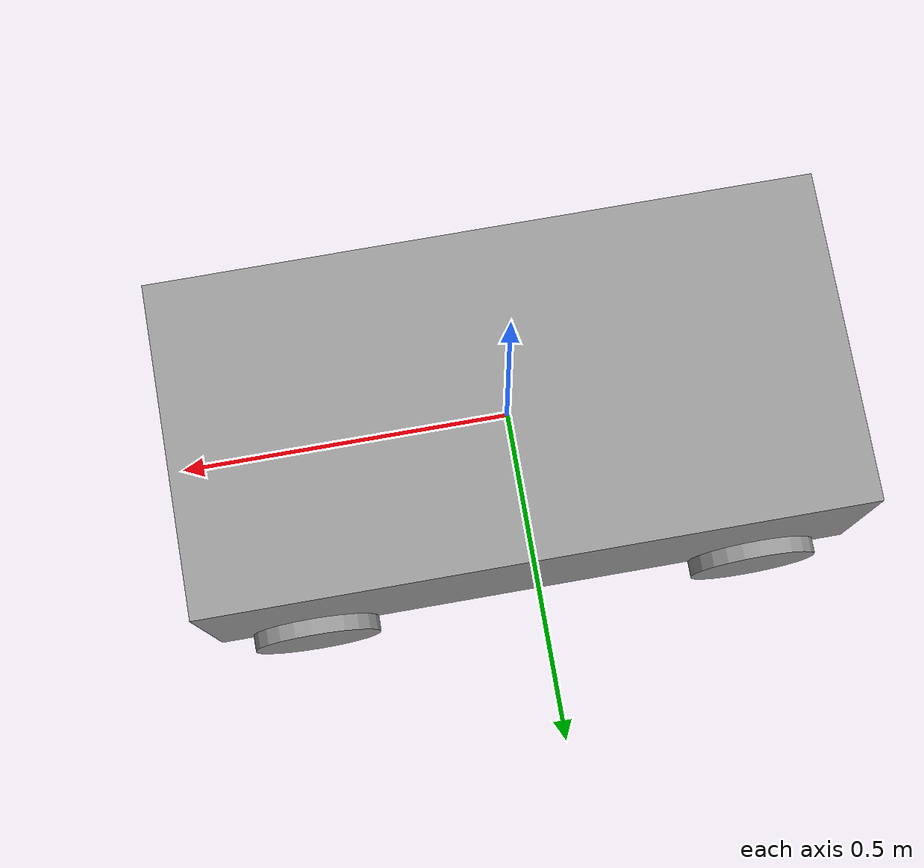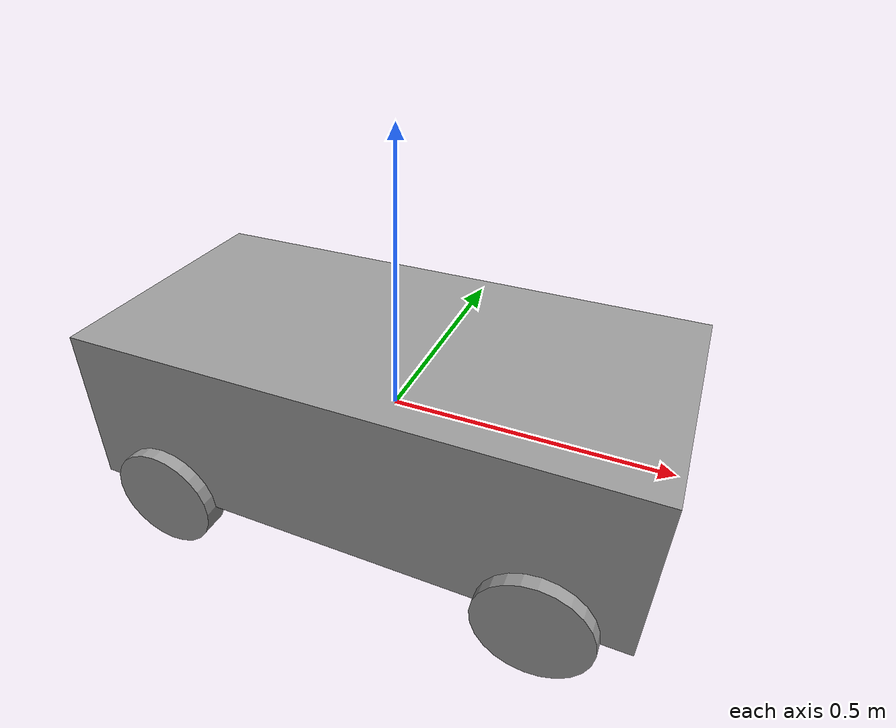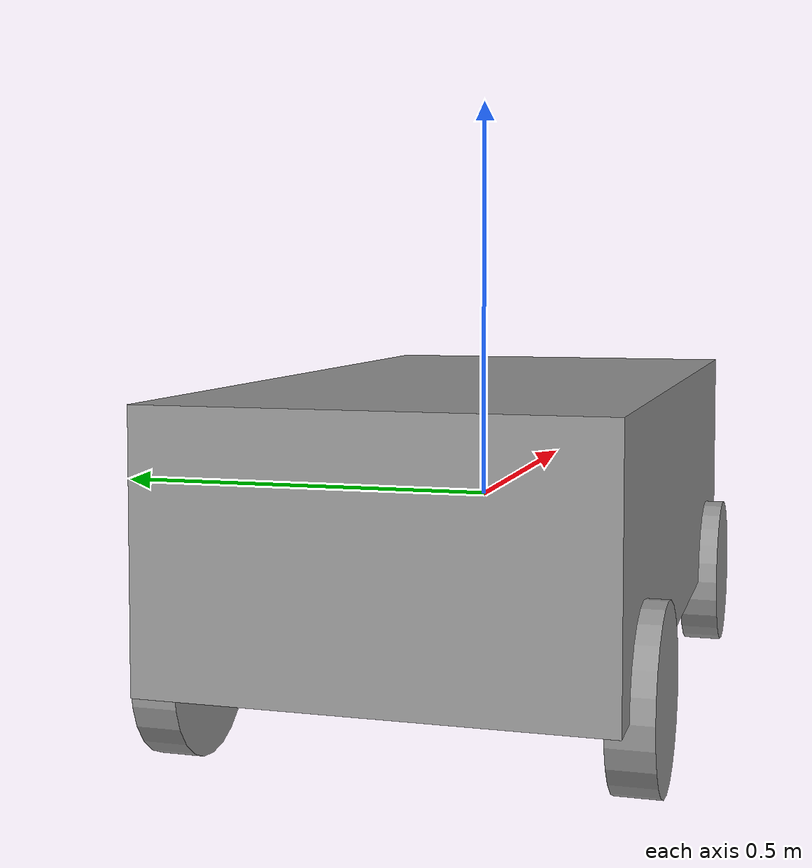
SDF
<?xml version='1.0'?>
<sdf version='1.6'>
  <model name='standalone'>
    <link name='link'>
      <inertial>
        <mass>1</mass>
        <inertia>
          <ixx>0.166667</ixx>
          <ixy>0</ixy>
          <ixz>0</ixz>
          <iyy>0.166667</iyy>
          <iyz>0</iyz>
          <izz>0.166667</izz>
        </inertia>
        <pose frame=''>0 0 0 0 -0 0</pose>
      </inertial>
      <self_collide>0</self_collide>
      <enable_wind>0</enable_wind>
      <kinematic>0</kinematic>
      <pose frame=''>0 0 0 0 -0 0</pose>
      <gravity>1</gravity>
      <visual name='visual'>
        <geometry>
          <box>
            <size>1 0.5 0.3</size>
          </box>
        </geometry>
        <material>
          <script>
            <name>Gazebo/Grey</name>
            <uri>file://media/materials/scripts/gazebo.material</uri>
          </script>
          <shader type='pixel'>
            <normal_map>__default__</normal_map>
          </shader>
          <ambient>0.3 0.3 0.3 1</ambient>
          <diffuse>0.7 0.7 0.7 1</diffuse>
          <specular>0.01 0.01 0.01 1</specular>
          <emissive>0 0 0 1</emissive>
        </material>
        <pose frame=''>0 0 0 0 -0 0</pose>
        <transparency>0</transparency>
        <cast_shadows>1</cast_shadows>
      </visual>
      <collision name='collision'>
        <laser_retro>0</laser_retro>
        <max_contacts>10</max_contacts>
        <pose frame=''>0 0 0 0 -0 0</pose>
        <geometry>
          <box>
            <size>1 0.5 0.3</size>
          </box>
        </geometry>
        <surface>
          <friction>
            <ode>
              <mu>1</mu>
              <mu2>1</mu2>
              <fdir1>0 0 0</fdir1>
              <slip1>0</slip1>
              <slip2>0</slip2>
            </ode>
            <torsional>
              <coefficient>1</coefficient>
              <patch_radius>0</patch_radius>
              <surface_radius>0</surface_radius>
              <use_patch_radius>1</use_patch_radius>
              <ode>
                <slip>0</slip>
              </ode>
            </torsional>
          </friction>
          <bounce>
            <restitution_coefficient>0</restitution_coefficient>
            <threshold>1e+06</threshold>
          </bounce>
          <contact>
            <collide_without_contact>0</collide_without_contact>
            <collide_without_contact_bitmask>1</collide_without_contact_bitmask>
            <collide_bitmask>1</collide_bitmask>
            <ode>
              <soft_cfm>0</soft_cfm>
              <soft_erp>0.2</soft_erp>
              <kp>1e+13</kp>
              <kd>1</kd>
              <max_vel>0.01</max_vel>
              <min_depth>0</min_depth>
            </ode>
            <bullet>
              <split_impulse>1</split_impulse>
              <split_impulse_penetration_threshold>-0.01</split_impulse_penetration_threshold>
              <soft_cfm>0</soft_cfm>
              <soft_erp>0.2</soft_erp>
              <kp>1e+13</kp>
              <kd>1</kd>
            </bullet>
          </contact>
        </surface>
      </collision>
    </link>
    <link name='link_0'>
      <inertial>
        <mass>1</mass>
        <inertia>
          <ixx>0.145833</ixx>
          <ixy>0</ixy>
          <ixz>0</ixz>
          <iyy>0.145833</iyy>
          <iyz>0</iyz>
          <izz>0.125</izz>
        </inertia>
        <pose frame=''>0 0 0 0 -0 0</pose>
      </inertial>
      <pose frame=''>0.35 -0.25 -0.15 -1.5708 0 0</pose>
      <gravity>1</gravity>
      <self_collide>0</self_collide>
      <kinematic>0</kinematic>
      <enable_wind>0</enable_wind>
      <visual name='visual'>
        <pose frame=''>0 0 0 0 -0 0</pose>
        <geometry>
          <cylinder>
            <radius>0.1</radius>
            <length>0.05</length>
          </cylinder>
        </geometry>
        <material>
          <lighting>1</lighting>
          <script>
            <uri>file://media/materials/scripts/gazebo.material</uri>
            <name>Gazebo/Grey</name>
          </script>
          <shader type='pixel'>
            <normal_map>__default__</normal_map>
          </shader>
          <ambient>0.3 0.3 0.3 1</ambient>
          <diffuse>0.7 0.7 0.7 1</diffuse>
          <specular>0.01 0.01 0.01 1</specular>
          <emissive>0 0 0 1</emissive>
        </material>
        <transparency>0</transparency>
        <cast_shadows>1</cast_shadows>
      </visual>
      <collision name='collision'>
        <laser_retro>0</laser_retro>
        <max_contacts>10</max_contacts>
        <pose frame=''>0 0 0 0 -0 0</pose>
        <geometry>
          <cylinder>
            <radius>0.1</radius>
            <length>0.05</length>
          </cylinder>
        </geometry>
        <surface>
          <friction>
            <ode>
              <mu>1</mu>
              <mu2>1</mu2>
              <fdir1>0 0 0</fdir1>
              <slip1>0</slip1>
              <slip2>0</slip2>
            </ode>
            <torsional>
              <coefficient>1</coefficient>
              <patch_radius>0</patch_radius>
              <surface_radius>0</surface_radius>
              <use_patch_radius>1</use_patch_radius>
              <ode>
                <slip>0</slip>
              </ode>
            </torsional>
          </friction>
          <bounce>
            <restitution_coefficient>0</restitution_coefficient>
            <threshold>1e+06</threshold>
          </bounce>
          <contact>
            <collide_without_contact>0</collide_without_contact>
            <collide_without_contact_bitmask>1</collide_without_contact_bitmask>
            <collide_bitmask>1</collide_bitmask>
            <ode>
              <soft_cfm>0</soft_cfm>
              <soft_erp>0.2</soft_erp>
              <kp>1e+13</kp>
              <kd>1</kd>
              <max_vel>0.01</max_vel>
              <min_depth>0</min_depth>
            </ode>
            <bullet>
              <split_impulse>1</split_impulse>
              <split_impulse_penetration_threshold>-0.01</split_impulse_penetration_threshold>
              <soft_cfm>0</soft_cfm>
              <soft_erp>0.2</soft_erp>
              <kp>1e+13</kp>
              <kd>1</kd>
            </bullet>
          </contact>
        </surface>
      </collision>
    </link>
    <link name='link_0_clone'>
      <inertial>
        <mass>1</mass>
        <inertia>
          <ixx>0.145833</ixx>
          <ixy>0</ixy>
          <ixz>0</ixz>
          <iyy>0.145833</iyy>
          <iyz>0</iyz>
          <izz>0.125</izz>
        </inertia>
        <pose frame=''>0 0 0 0 -0 0</pose>
      </inertial>
      <pose frame=''>-0.35 -0.25 -0.15 -1.5708 0 0</pose>
      <gravity>1</gravity>
      <self_collide>0</self_collide>
      <kinematic>0</kinematic>
      <enable_wind>0</enable_wind>
      <visual name='visual'>
        <pose frame=''>0 0 0 0 -0 0</pose>
        <geometry>
          <cylinder>
            <radius>0.1</radius>
            <length>0.05</length>
          </cylinder>
        </geometry>
        <material>
          <lighting>1</lighting>
          <script>
            <uri>file://media/materials/scripts/gazebo.material</uri>
            <name>Gazebo/Grey</name>
          </script>
          <shader type='pixel'>
            <normal_map>__default__</normal_map>
          </shader>
          <ambient>0.3 0.3 0.3 1</ambient>
          <diffuse>0.7 0.7 0.7 1</diffuse>
          <specular>0.01 0.01 0.01 1</specular>
          <emissive>0 0 0 1</emissive>
        </material>
        <transparency>0</transparency>
        <cast_shadows>1</cast_shadows>
      </visual>
      <collision name='collision'>
        <laser_retro>0</laser_retro>
        <max_contacts>10</max_contacts>
        <pose frame=''>0 0 0 0 -0 0</pose>
        <geometry>
          <cylinder>
            <radius>0.1</radius>
            <length>0.05</length>
          </cylinder>
        </geometry>
        <surface>
          <friction>
            <ode>
              <mu>1</mu>
              <mu2>1</mu2>
              <fdir1>0 0 0</fdir1>
              <slip1>0</slip1>
              <slip2>0</slip2>
            </ode>
            <torsional>
              <coefficient>1</coefficient>
              <patch_radius>0</patch_radius>
              <surface_radius>0</surface_radius>
              <use_patch_radius>1</use_patch_radius>
              <ode>
                <slip>0</slip>
              </ode>
            </torsional>
          </friction>
          <bounce>
            <restitution_coefficient>0</restitution_coefficient>
            <threshold>1e+06</threshold>
          </bounce>
          <contact>
            <collide_without_contact>0</collide_without_contact>
            <collide_without_contact_bitmask>1</collide_without_contact_bitmask>
            <collide_bitmask>1</collide_bitmask>
            <ode>
              <soft_cfm>0</soft_cfm>
              <soft_erp>0.2</soft_erp>
              <kp>1e+13</kp>
              <kd>1</kd>
              <max_vel>0.01</max_vel>
              <min_depth>0</min_depth>
            </ode>
            <bullet>
              <split_impulse>1</split_impulse>
              <split_impulse_penetration_threshold>-0.01</split_impulse_penetration_threshold>
              <soft_cfm>0</soft_cfm>
              <soft_erp>0.2</soft_erp>
              <kp>1e+13</kp>
              <kd>1</kd>
            </bullet>
          </contact>
        </surface>
      </collision>
    </link>
    <link name='link_0_clone_0'>
      <inertial>
        <mass>1</mass>
        <inertia>
          <ixx>0.145833</ixx>
          <ixy>0</ixy>
          <ixz>0</ixz>
          <iyy>0.145833</iyy>
          <iyz>0</iyz>
          <izz>0.125</izz>
        </inertia>
        <pose frame=''>0 0 0 0 -0 0</pose>
      </inertial>
      <pose frame=''>-0.35 0.25 -0.15 -1.5708 0 0</pose>
      <gravity>1</gravity>
      <self_collide>0</self_collide>
      <kinematic>0</kinematic>
      <enable_wind>0</enable_wind>
      <visual name='visual'>
        <pose frame=''>0 0 0 0 -0 0</pose>
        <geometry>
          <cylinder>
            <radius>0.1</radius>
            <length>0.05</length>
          </cylinder>
        </geometry>
        <material>
          <lighting>1</lighting>
          <script>
            <uri>file://media/materials/scripts/gazebo.material</uri>
            <name>Gazebo/Grey</name>
          </script>
          <shader type='pixel'>
            <normal_map>__default__</normal_map>
          </shader>
          <ambient>0.3 0.3 0.3 1</ambient>
          <diffuse>0.7 0.7 0.7 1</diffuse>
          <specular>0.01 0.01 0.01 1</specular>
          <emissive>0 0 0 1</emissive>
        </material>
        <transparency>0</transparency>
        <cast_shadows>1</cast_shadows>
      </visual>
      <collision name='collision'>
        <laser_retro>0</laser_retro>
        <max_contacts>10</max_contacts>
        <pose frame=''>0 0 0 0 -0 0</pose>
        <geometry>
          <cylinder>
            <radius>0.1</radius>
            <length>0.05</length>
          </cylinder>
        </geometry>
        <surface>
          <friction>
            <ode>
              <mu>1</mu>
              <mu2>1</mu2>
              <fdir1>0 0 0</fdir1>
              <slip1>0</slip1>
              <slip2>0</slip2>
            </ode>
            <torsional>
              <coefficient>1</coefficient>
              <patch_radius>0</patch_radius>
              <surface_radius>0</surface_radius>
              <use_patch_radius>1</use_patch_radius>
              <ode>
                <slip>0</slip>
              </ode>
            </torsional>
          </friction>
          <bounce>
            <restitution_coefficient>0</restitution_coefficient>
            <threshold>1e+06</threshold>
          </bounce>
          <contact>
            <collide_without_contact>0</collide_without_contact>
            <collide_without_contact_bitmask>1</collide_without_contact_bitmask>
            <collide_bitmask>1</collide_bitmask>
            <ode>
              <soft_cfm>0</soft_cfm>
              <soft_erp>0.2</soft_erp>
              <kp>1e+13</kp>
              <kd>1</kd>
              <max_vel>0.01</max_vel>
              <min_depth>0</min_depth>
            </ode>
            <bullet>
              <split_impulse>1</split_impulse>
              <split_impulse_penetration_threshold>-0.01</split_impulse_penetration_threshold>
              <soft_cfm>0</soft_cfm>
              <soft_erp>0.2</soft_erp>
              <kp>1e+13</kp>
              <kd>1</kd>
            </bullet>
          </contact>
        </surface>
      </collision>
    </link>
    <link name='link_0_clone_1'>
      <inertial>
        <mass>1</mass>
        <inertia>
          <ixx>0.145833</ixx>
          <ixy>0</ixy>
          <ixz>0</ixz>
          <iyy>0.145833</iyy>
          <iyz>0</iyz>
          <izz>0.125</izz>
        </inertia>
        <pose frame=''>0 0 0 0 -0 0</pose>
      </inertial>
      <pose frame=''>0.35 0.25 -0.15 -1.5708 0 0</pose>
      <gravity>1</gravity>
      <self_collide>0</self_collide>
      <kinematic>0</kinematic>
      <enable_wind>0</enable_wind>
      <visual name='visual'>
        <pose frame=''>0 0 0 0 -0 0</pose>
        <geometry>
          <cylinder>
            <radius>0.1</radius>
            <length>0.05</length>
          </cylinder>
        </geometry>
        <material>
          <lighting>1</lighting>
          <script>
            <uri>file://media/materials/scripts/gazebo.material</uri>
            <name>Gazebo/Grey</name>
          </script>
          <shader type='pixel'>
            <normal_map>__default__</normal_map>
          </shader>
          <ambient>0.3 0.3 0.3 1</ambient>
          <diffuse>0.7 0.7 0.7 1</diffuse>
          <specular>0.01 0.01 0.01 1</specular>
          <emissive>0 0 0 1</emissive>
        </material>
        <transparency>0</transparency>
        <cast_shadows>1</cast_shadows>
      </visual>
      <collision name='collision'>
        <laser_retro>0</laser_retro>
        <max_contacts>10</max_contacts>
        <pose frame=''>0 0 0 0 -0 0</pose>
        <geometry>
          <cylinder>
            <radius>0.1</radius>
            <length>0.05</length>
          </cylinder>
        </geometry>
        <surface>
          <friction>
            <ode>
              <mu>1</mu>
              <mu2>1</mu2>
              <fdir1>0 0 0</fdir1>
              <slip1>0</slip1>
              <slip2>0</slip2>
            </ode>
            <torsional>
              <coefficient>1</coefficient>
              <patch_radius>0</patch_radius>
              <surface_radius>0</surface_radius>
              <use_patch_radius>1</use_patch_radius>
              <ode>
                <slip>0</slip>
              </ode>
            </torsional>
          </friction>
          <bounce>
            <restitution_coefficient>0</restitution_coefficient>
            <threshold>1e+06</threshold>
          </bounce>
          <contact>
            <collide_without_contact>0</collide_without_contact>
            <collide_without_contact_bitmask>1</collide_without_contact_bitmask>
            <collide_bitmask>1</collide_bitmask>
            <ode>
              <soft_cfm>0</soft_cfm>
              <soft_erp>0.2</soft_erp>
              <kp>1e+13</kp>
              <kd>1</kd>
              <max_vel>0.01</max_vel>
              <min_depth>0</min_depth>
            </ode>
            <bullet>
              <split_impulse>1</split_impulse>
              <split_impulse_penetration_threshold>-0.01</split_impulse_penetration_threshold>
              <soft_cfm>0</soft_cfm>
              <soft_erp>0.2</soft_erp>
              <kp>1e+13</kp>
              <kd>1</kd>
            </bullet>
          </contact>
        </surface>
      </collision>
    </link>
    <joint name='front_left' type='universal'>
      <parent>link</parent>
      <child>link_0_clone_1</child>
      <pose frame=''>0 0 0 0 -0 0</pose>
      <axis>
        <xyz>0 0 1</xyz>
        <use_parent_model_frame>0</use_parent_model_frame>
        <limit>
          <lower>-1.79769e+308</lower>
          <upper>1.79769e+308</upper>
          <effort>-1</effort>
          <velocity>-1</velocity>
        </limit>
        <dynamics>
          <spring_reference>0</spring_reference>
          <spring_stiffness>0</spring_stiffness>
          <damping>0</damping>
          <friction>0</friction>
        </dynamics>
      </axis>
      <axis2>
        <xyz>0 -1 0</xyz>
        <use_parent_model_frame>0</use_parent_model_frame>
        <dynamics>
          <spring_reference>0</spring_reference>
          <spring_stiffness>0</spring_stiffness>
          <damping>0</damping>
          <friction>0</friction>
        </dynamics>
        <limit>
          <lower>-1e+16</lower>
          <upper>1e+16</upper>
          <effort>-1</effort>
          <velocity>-1</velocity>
        </limit>
      </axis2>
      <physics>
        <ode>
          <limit>
            <cfm>0</cfm>
            <erp>0.2</erp>
          </limit>
          <suspension>
            <cfm>0</cfm>
            <erp>0.2</erp>
          </suspension>
        </ode>
      </physics>
    </joint>
    <joint name='front_right' type='universal'>
      <parent>link</parent>
      <child>link_0</child>
      <pose frame=''>0 0 0 0 -0 0</pose>
      <axis>
        <xyz>0 0 1</xyz>
        <use_parent_model_frame>0</use_parent_model_frame>
        <limit>
          <lower>-1.79769e+308</lower>
          <upper>1.79769e+308</upper>
          <effort>-1</effort>
          <velocity>-1</velocity>
        </limit>
        <dynamics>
          <spring_reference>0</spring_reference>
          <spring_stiffness>0</spring_stiffness>
          <damping>0</damping>
          <friction>0</friction>
        </dynamics>
      </axis>
      <axis2>
        <xyz>0 -1 0</xyz>
        <use_parent_model_frame>0</use_parent_model_frame>
        <dynamics>
          <spring_reference>0</spring_reference>
          <spring_stiffness>0</spring_stiffness>
          <damping>0</damping>
          <friction>0</friction>
        </dynamics>
        <limit>
          <lower>-1.79769e+308</lower>
          <upper>1.79769e+308</upper>
          <effort>-1</effort>
          <velocity>-1</velocity>
        </limit>
      </axis2>
      <physics>
        <ode>
          <limit>
            <cfm>0</cfm>
            <erp>0.2</erp>
          </limit>
          <suspension>
            <cfm>0</cfm>
            <erp>0.2</erp>
          </suspension>
        </ode>
      </physics>
    </joint>
    <joint name='rear_left' type='universal'>
      <parent>link</parent>
      <child>link_0_clone_0</child>
      <pose frame=''>0 0 0 0 -0 0</pose>
      <axis>
        <xyz>0 0 1</xyz>
        <use_parent_model_frame>0</use_parent_model_frame>
        <limit>
          <lower>-1.79769e+308</lower>
          <upper>1.79769e+308</upper>
          <effort>-1</effort>
          <velocity>-1</velocity>
        </limit>
        <dynamics>
          <spring_reference>0</spring_reference>
          <spring_stiffness>0</spring_stiffness>
          <damping>0</damping>
          <friction>0</friction>
        </dynamics>
      </axis>
      <axis2>
        <xyz>0 -1 0</xyz>
        <use_parent_model_frame>0</use_parent_model_frame>
        <dynamics>
          <spring_reference>0</spring_reference>
          <spring_stiffness>0</spring_stiffness>
          <damping>0</damping>
          <friction>0</friction>
        </dynamics>
        <limit>
          <lower>-1e+16</lower>
          <upper>1e+16</upper>
          <effort>-1</effort>
          <velocity>-1</velocity>
        </limit>
      </axis2>
      <physics>
        <ode>
          <limit>
            <cfm>0</cfm>
            <erp>0.2</erp>
          </limit>
          <suspension>
            <cfm>0</cfm>
            <erp>0.2</erp>
          </suspension>
        </ode>
      </physics>
    </joint>
    <joint name='rear_right' type='universal'>
      <parent>link</parent>
      <child>link_0_clone</child>
      <pose frame=''>0 0 0 0 -0 0</pose>
      <axis>
        <xyz>0 0 1</xyz>
        <use_parent_model_frame>0</use_parent_model_frame>
        <limit>
          <lower>-1.79769e+308</lower>
          <upper>1.79769e+308</upper>
          <effort>-1</effort>
          <velocity>-1</velocity>
        </limit>
        <dynamics>
          <spring_reference>0</spring_reference>
          <spring_stiffness>0</spring_stiffness>
          <damping>0</damping>
          <friction>0</friction>
        </dynamics>
      </axis>
      <axis2>
        <xyz>0 -1 0</xyz>
        <use_parent_model_frame>0</use_parent_model_frame>
        <dynamics>
          <spring_reference>0</spring_reference>
          <spring_stiffness>0</spring_stiffness>
          <damping>0</damping>
          <friction>0</friction>
        </dynamics>
        <limit>
          <lower>-1e+16</lower>
          <upper>1e+16</upper>
          <effort>-1</effort>
          <velocity>-1</velocity>
        </limit>
      </axis2>
      <physics>
        <ode>
          <limit>
            <cfm>0</cfm>
            <erp>0.2</erp>
          </limit>
          <suspension>
            <cfm>0</cfm>
            <erp>0.2</erp>
          </suspension>
        </ode>
      </physics>
    </joint>
    <static>0</static>
    <allow_auto_disable>1</allow_auto_disable>
    <plugin name='Standalone' filename='libStandalonePlugin.so'/>
  </model>
</sdf>
